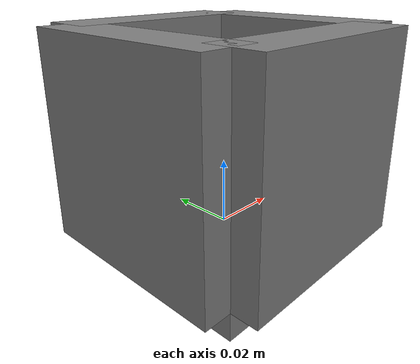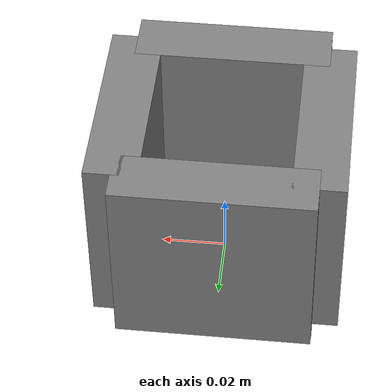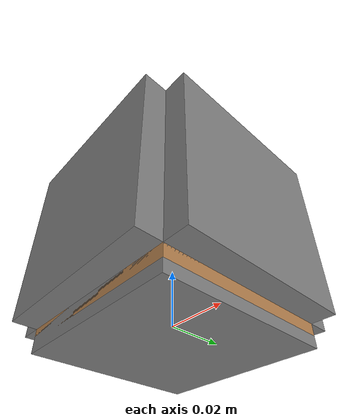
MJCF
<mujoco model="hollowbox">
  <asset>
    <texture file="../textures/wood-tiles.png" type="cube" name="ceramic-met"/>
    <material name="sceramic" reflectance="0.5" shininess="1.0" specular="1.0" texrepeat="1 1" texture="ceramic-met" texuniform="true"/>
  </asset>
  <worldbody>
    <body>

      <body name="object">
        <geom pos="0 0 0" size="0.03 0.03 0.008" type="box" group="0" friction="1 1 1"/>
        <geom pos="0 0 0" material="sceramic" size="0.03 0.03 0.004" type="box" conaffinity="0" contype="0" group="1" mass="0.001"/>
        <geom pos="0 0.03 0.03" size="0.03 0.008 0.03" type="box" group="0" friction="1 1 1"/>
        <geom pos="0 0.03 0.03" size="0.03 0.008 0.03" type="box" conaffinity="0" contype="0" group="0"  mass="0.001" material="sceramic"/>
        <geom pos="0.03 0 0.03" size="0.008 0.03 0.03" type="box" group="0" friction="1 1 1"/>
        <geom pos="0.03 0 0.03" size="0.008 0.03 0.03" type="box" conaffinity="0" contype="0" group="0" mass="0.001" material="sceramic"/>
        <geom pos="0 -0.03 0.03" size="0.03 0.008 0.03" type="box" group="0" friction="1 1 1"/>
        <geom pos="0 -0.03 0.03" size="0.03 0.008 0.03" type="box" conaffinity="0" contype="0" group="0"  mass="0.001" material="sceramic"/>
        <geom pos="-0.03 0 0.03" size="0.008 0.03 0.03" type="box" group="0" friction="1 1 1"/>
        <geom pos="-0.03 0 0.03" size="0.008 0.03 0.03" type="box" conaffinity="0" contype="0" group="0" mass="0.001" material="sceramic"/>
      </body>

      <site rgba="0 0 0 0" size="0.001" pos="0 0 -0.008" name="bottom_site"/>
      <site rgba="0 0 0 0" size="0.001" pos="0 0 0.068" name="top_site"/>
      <site rgba="0 0 0 0" size="0.001" pos="0.038 0.038 0" name="horizontal_radius_site"/>
    </body>
  </worldbody>
</mujoco>
